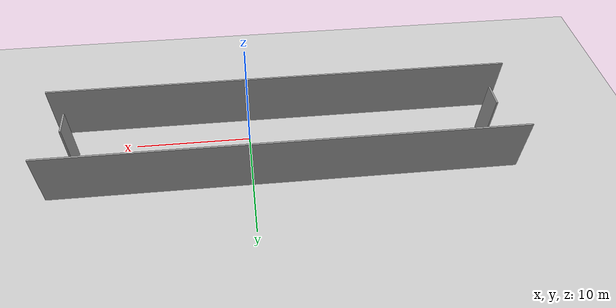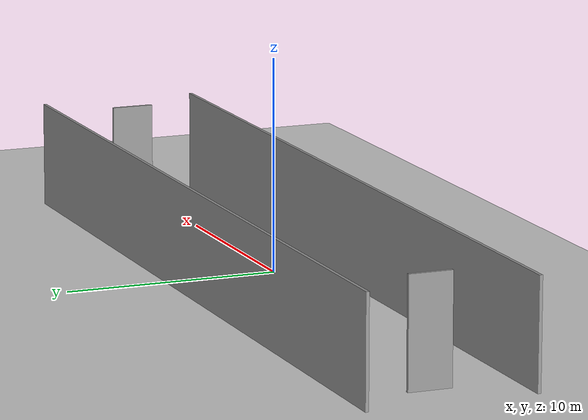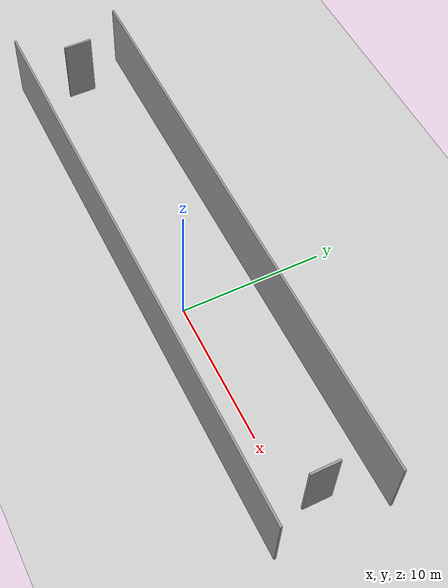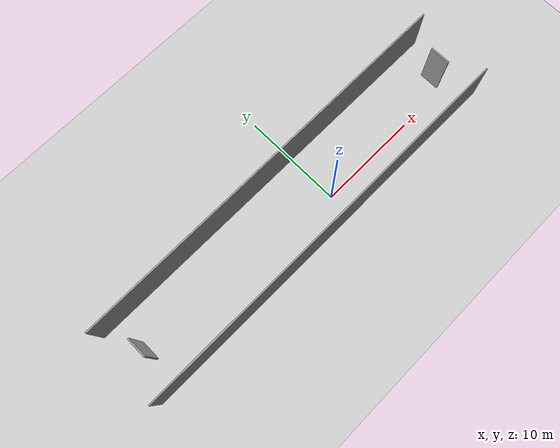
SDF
<sdf version="1.7">
 <world name="default">
  <plugin name="ros_interface_plugin" filename="librotors_gazebo_ros_interface_plugin.so"/>
  <light name="sun" type="directional">
   <pose>0 0 10 0 -0 0</pose>
   <diffuse>0.8 0.8 0.8 1</diffuse>
   <specular>0.2 0.2 0.2 1</specular>
   <attenuation>
    <range>1000</range>
    <constant>0.9</constant>
    <linear>0.01</linear>
    <quadratic>0.001</quadratic>
   </attenuation>
   <direction>-0.5 0.1 -0.9</direction>
   <spot><inner_angle>0</inner_angle><outer_angle>0</outer_angle><falloff>0</falloff></spot>
  </light>
  <model name="ground_plane">
   <static>1</static>
   <link name="link">
    <collision name="collision">
     <geometry><plane><normal>0 0 1</normal><size>100 100</size></plane></geometry>
     <surface><friction><ode><mu>100</mu><mu2>50</mu2></ode></friction></surface>
    </collision>
    <visual name="visual">
     <cast_shadows>0</cast_shadows>
     <geometry><plane><normal>0 0 1</normal><size>100 100</size></plane></geometry>
     <material>
      <script><uri>file://media/materials/scripts/gazebo.material</uri><name>Gazebo/Grey</name></script>
     </material>
    </visual>
   </link>
  </model>
  <gravity>0 0 -9.8</gravity>
  <magnetic_field>6e-06 2.3e-05 -4.2e-05</magnetic_field>
  <atmosphere type="adiabatic"/>
  <physics type="ode">
   <max_step_size>0.01</max_step_size>
   <real_time_factor>1</real_time_factor>
   <real_time_update_rate>100</real_time_update_rate>
  </physics>
  <scene><ambient>0.4 0.4 0.4 1</ambient><background>0.7 0.7 0.7 1</background><shadows>1</shadows></scene>
  <spherical_coordinates>
   <surface_model>EARTH_WGS84</surface_model>
   <latitude_deg>0</latitude_deg>
   <longitude_deg>0</longitude_deg>
   <elevation>0</elevation>
   <heading_deg>0</heading_deg>
  </spherical_coordinates>
  <model name="Untitled">
   <pose>-2.94602 1.38295 0 0 -0 0</pose>
   <link name="Wall_10">
    <collision name="Wall_10_Collision">
     <geometry><box><size>2.0 0.15 5.0</size></box></geometry>
     <pose>0 0 2.5 0 -0 0</pose>
    </collision>
    <visual name="Wall_10_Visual">
     <pose>0 0 2.5 0 -0 0</pose>
     <geometry><box><size>2.0 0.15 5.0</size></box></geometry>
     <material>
      <script><uri>file://media/materials/scripts/gazebo.material</uri><name>Gazebo/Grey</name></script>
      <ambient>1 1 1 1</ambient>
     </material>
     <meta><layer>0</layer></meta>
    </visual>
    <pose>-17.8 0.125 0 0 -0 -1.5708</pose>
   </link>
   <link name="Wall_7">
    <collision name="Wall_7_Collision">
     <geometry><box><size>40.0 0.15 5.0</size></box></geometry>
     <pose>0 0 2.5 0 -0 0</pose>
    </collision>
    <visual name="Wall_7_Visual">
     <pose>0 0 2.5 0 -0 0</pose>
     <geometry><box><size>40.0 0.15 5.0</size></box></geometry>
     <material>
      <script><uri>file://media/materials/scripts/gazebo.material</uri><name>Gazebo/Grey</name></script>
      <ambient>1 1 1 1</ambient>
     </material>
     <meta><layer>0</layer></meta>
    </visual>
    <pose>-0 -3.8 0 0 -0 0</pose>
   </link>
   <link name="Wall_8">
    <collision name="Wall_8_Collision">
     <geometry><box><size>2.0 0.15 5.0</size></box></geometry>
     <pose>0 0 2.5 0 -0 0</pose>
    </collision>
    <visual name="Wall_8_Visual">
     <pose>0 0 2.5 0 -0 0</pose>
     <geometry><box><size>2.0 0.15 5.0</size></box></geometry>
     <material>
      <script><uri>file://media/materials/scripts/gazebo.material</uri><name>Gazebo/Grey</name></script>
      <ambient>1 1 1 1</ambient>
     </material>
     <meta><layer>0</layer></meta>
    </visual>
    <pose>18.05 -0 0 0 -0 1.5708</pose>
   </link>
   <link name="Wall_9">
    <collision name="Wall_9_Collision">
     <geometry><box><size>40.0 0.15 5.0</size></box></geometry>
     <pose>0 0 2.5 0 -0 0</pose>
    </collision>
    <visual name="Wall_9_Visual">
     <pose>0 0 2.5 0 -0 0</pose>
     <geometry><box><size>40.0 0.15 5.0</size></box></geometry>
     <material>
      <script><uri>file://media/materials/scripts/gazebo.material</uri><name>Gazebo/Grey</name></script>
      <ambient>1 1 1 1</ambient>
     </material>
     <meta><layer>0</layer></meta>
    </visual>
    <pose>0.125 3.8 0 0 -0 3.14159</pose>
   </link>
   <static>1</static>
  </model>
 </world>
</sdf>
